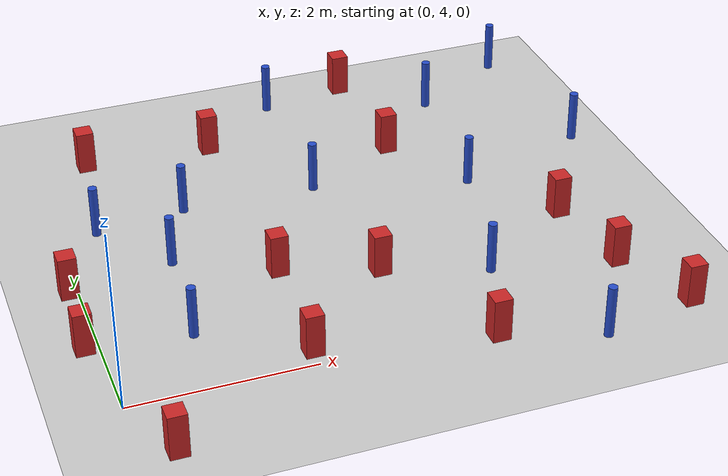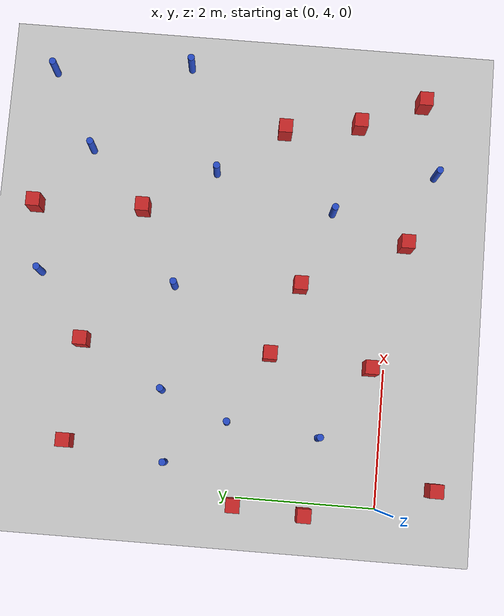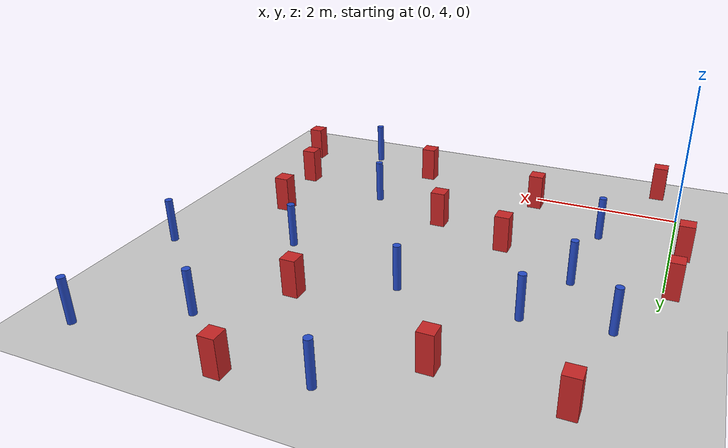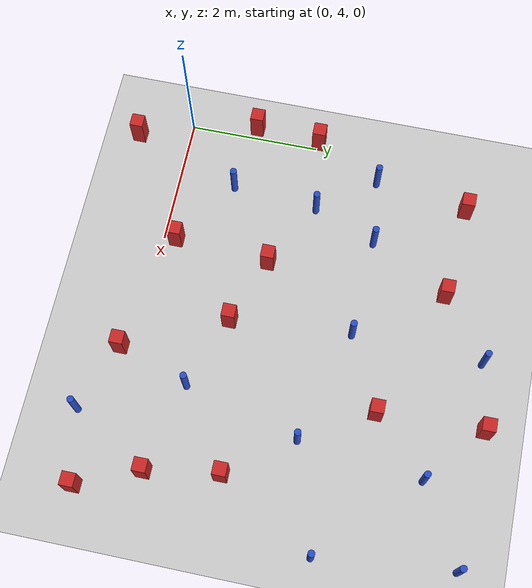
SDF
<sdf version="1.6">
 <world name="default">
  <model name="ground_plane">
   <static>1</static>
   <link name="link">
    <collision name="collision">
     <geometry><plane><normal>0 0 1</normal><size>100 100</size></plane></geometry>
     <surface><friction><ode><mu>100</mu><mu2>50</mu2></ode></friction></surface>
    </collision>
    <visual name="visual">
     <cast_shadows>0</cast_shadows>
     <geometry><plane><normal>0 0 1</normal><size>100 100</size></plane></geometry>
     <material>
      <ambient>1 1 1 1</ambient>
      <diffuse>0.8 0.8 0.8 1</diffuse>
      <specular>0.01 0.01 0.01 1</specular>
     </material>
    </visual>
   </link>
  </model>
  <model name="pole_obstacle2">
   <static>0</static>
   <link name="link">
    <pose>0 0 0.3 0 -0 0</pose>
    <inertial>
     <mass>1</mass>
     <inertia><ixx>0.145833</ixx><ixy>0</ixy><ixz>0</ixz><iyy>0.145833</iyy><iyz>0</iyz><izz>0.125</izz></inertia>
    </inertial>
    <collision name="collision">
     <geometry><cylinder><radius>0.05</radius><length>0.6</length></cylinder></geometry>
    </collision>
    <visual name="visual">
     <geometry><cylinder><radius>0.05</radius><length>0.6</length></cylinder></geometry>
     <material>
      <script><name>Gazebo/Blue</name><uri>file://media/materials/scripts/gazebo.material</uri></script>
     </material>
    </visual>
   </link>
   <pose>1.06586 6.21019 -1e-06 -0 1e-06 1.1e-05</pose>
  </model>
  <model name="pole_obstacle4">
   <static>0</static>
   <link name="link">
    <pose>0 0 0.3 0 -0 0</pose>
    <inertial>
     <mass>1</mass>
     <inertia><ixx>0.145833</ixx><ixy>0</ixy><ixz>0</ixz><iyy>0.145833</iyy><iyz>0</iyz><izz>0.125</izz></inertia>
    </inertial>
    <collision name="collision">
     <geometry><cylinder><radius>0.05</radius><length>0.6</length></cylinder></geometry>
    </collision>
    <visual name="visual">
     <geometry><cylinder><radius>0.05</radius><length>0.6</length></cylinder></geometry>
     <material>
      <script><name>Gazebo/Blue</name><uri>file://media/materials/scripts/gazebo.material</uri></script>
     </material>
    </visual>
   </link>
   <pose>4.92123 8.50647 -6e-06 0 -0 3e-06</pose>
  </model>
  <model name="pole_obstacle8">
   <static>0</static>
   <link name="link">
    <pose>0 0 0.3 0 -0 0</pose>
    <inertial>
     <mass>1</mass>
     <inertia><ixx>0.145833</ixx><ixy>0</ixy><ixz>0</ixz><iyy>0.145833</iyy><iyz>0</iyz><izz>0.125</izz></inertia>
    </inertial>
    <collision name="collision">
     <geometry><cylinder><radius>0.05</radius><length>0.6</length></cylinder></geometry>
    </collision>
    <visual name="visual">
     <geometry><cylinder><radius>0.05</radius><length>0.6</length></cylinder></geometry>
     <material>
      <script><name>Gazebo/Blue</name><uri>file://media/materials/scripts/gazebo.material</uri></script>
     </material>
    </visual>
   </link>
   <pose>2.97873 7.12761 -2e-06 -1e-06 -0 9e-06</pose>
  </model>
  <model name="pole_obstacle9">
   <static>0</static>
   <link name="link">
    <pose>0 0 0.3 0 -0 0</pose>
    <inertial>
     <mass>1</mass>
     <inertia><ixx>0.145833</ixx><ixy>0</ixy><ixz>0</ixz><iyy>0.145833</iyy><iyz>0</iyz><izz>0.125</izz></inertia>
    </inertial>
    <collision name="collision">
     <geometry><cylinder><radius>0.05</radius><length>0.6</length></cylinder></geometry>
    </collision>
    <visual name="visual">
     <geometry><cylinder><radius>0.05</radius><length>0.6</length></cylinder></geometry>
     <material>
      <script><name>Gazebo/Blue</name><uri>file://media/materials/scripts/gazebo.material</uri></script>
     </material>
    </visual>
   </link>
   <pose>0.944334 4.88568 -1e-06 -1e-06 -0 1.3e-05</pose>
  </model>
  <model name="square_post_obstacle11">
   <static>0</static>
   <link name="link">
    <pose>0 0 0.25 0 -0 0</pose>
    <inertial>
     <mass>100</mass>
     <inertia>
      <ixx>0.166667</ixx>
      <ixy>0</ixy>
      <ixz>0</ixz>
      <iyy>0.166667</iyy>
      <iyz>0</iyz>
      <izz>0.166667</izz>
     </inertia>
    </inertial>
    <collision name="collision"><geometry><box><size>0.2 0.2 0.5</size></box></geometry></collision>
    <visual name="visual">
     <geometry><box><size>0.2 0.2 0.5</size></box></geometry>
     <material>
      <script><name>Gazebo/Red</name><uri>file://media/materials/scripts/gazebo.material</uri></script>
     </material>
    </visual>
   </link>
   <pose>0.330037 3.2044 0 -5e-06 -0 0.000241</pose>
  </model>
  <model name="pole_obstacle15">
   <static>0</static>
   <link name="link">
    <pose>0 0 0.3 0 -0 0</pose>
    <inertial>
     <mass>1</mass>
     <inertia><ixx>0.145833</ixx><ixy>0</ixy><ixz>0</ixz><iyy>0.145833</iyy><iyz>0</iyz><izz>0.125</izz></inertia>
    </inertial>
    <collision name="collision">
     <geometry><cylinder><radius>0.05</radius><length>0.6</length></cylinder></geometry>
    </collision>
    <visual name="visual">
     <geometry><cylinder><radius>0.05</radius><length>0.6</length></cylinder></geometry>
     <material>
      <script><name>Gazebo/Blue</name><uri>file://media/materials/scripts/gazebo.material</uri></script>
     </material>
    </visual>
   </link>
   <pose>0.428044 7.05702 -9e-06 1e-06 -1e-06 1.1e-05</pose>
  </model>
  <model name="pole_obstacle26">
   <static>0</static>
   <link name="link">
    <pose>0 0 0.3 0 -0 0</pose>
    <inertial>
     <mass>1</mass>
     <inertia><ixx>0.145833</ixx><ixy>0</ixy><ixz>0</ixz><iyy>0.145833</iyy><iyz>0</iyz><izz>0.125</izz></inertia>
    </inertial>
    <collision name="collision">
     <geometry><cylinder><radius>0.05</radius><length>0.6</length></cylinder></geometry>
    </collision>
    <visual name="visual">
     <geometry><cylinder><radius>0.05</radius><length>0.6</length></cylinder></geometry>
     <material>
      <script><name>Gazebo/Blue</name><uri>file://media/materials/scripts/gazebo.material</uri></script>
     </material>
    </visual>
   </link>
   <pose>3.03408 9.09152 -3e-06 0 -0 9e-06</pose>
  </model>
  <model name="square_post_obstacle22">
   <static>0</static>
   <link name="link">
    <pose>0 0 0.25 0 -0 0</pose>
    <inertial>
     <mass>100</mass>
     <inertia>
      <ixx>0.166667</ixx>
      <ixy>0</ixy>
      <ixz>0</ixz>
      <iyy>0.166667</iyy>
      <iyz>0</iyz>
      <izz>0.166667</izz>
     </inertia>
    </inertial>
    <collision name="collision"><geometry><box><size>0.2 0.2 0.5</size></box></geometry></collision>
    <visual name="visual">
     <geometry><box><size>0.2 0.2 0.5</size></box></geometry>
     <material>
      <script><name>Gazebo/Red</name><uri>file://media/materials/scripts/gazebo.material</uri></script>
     </material>
    </visual>
   </link>
   <pose>3.11926 5.30204 0 -5e-06 -0 0.000241</pose>
  </model>
  <model name="square_post_obstacle24">
   <static>0</static>
   <link name="link">
    <pose>0 0 0.25 0 -0 0</pose>
    <inertial>
     <mass>100</mass>
     <inertia>
      <ixx>0.166667</ixx>
      <ixy>0</ixy>
      <ixz>0</ixz>
      <iyy>0.166667</iyy>
      <iyz>0</iyz>
      <izz>0.166667</izz>
     </inertia>
    </inertial>
    <collision name="collision"><geometry><box><size>0.2 0.2 0.5</size></box></geometry></collision>
    <visual name="visual">
     <geometry><box><size>0.2 0.2 0.5</size></box></geometry>
     <material>
      <script><name>Gazebo/Red</name><uri>file://media/materials/scripts/gazebo.material</uri></script>
     </material>
    </visual>
   </link>
   <pose>5.40658 5.69323 0 -5e-06 -0 0.000241</pose>
  </model>
  <model name="square_post_obstacle25">
   <static>0</static>
   <link name="link">
    <pose>0 0 0.25 0 -0 0</pose>
    <inertial>
     <mass>100</mass>
     <inertia>
      <ixx>0.166667</ixx>
      <ixy>0</ixy>
      <ixz>0</ixz>
      <iyy>0.166667</iyy>
      <iyz>0</iyz>
      <izz>0.166667</izz>
     </inertia>
    </inertial>
    <collision name="collision"><geometry><box><size>0.2 0.2 0.5</size></box></geometry></collision>
    <visual name="visual">
     <geometry><box><size>0.2 0.2 0.5</size></box></geometry>
     <material>
      <script><name>Gazebo/Red</name><uri>file://media/materials/scripts/gazebo.material</uri></script>
     </material>
    </visual>
   </link>
   <pose>0.62635 8.48914 0 -5e-06 -0 0.000241</pose>
  </model>
  <model name="square_post_obstacle27">
   <static>0</static>
   <link name="link">
    <pose>0 0 0.25 0 -0 0</pose>
    <inertial>
     <mass>100</mass>
     <inertia>
      <ixx>0.166667</ixx>
      <ixy>0</ixy>
      <ixz>0</ixz>
      <iyy>0.166667</iyy>
      <iyz>0</iyz>
      <izz>0.166667</izz>
     </inertia>
    </inertial>
    <collision name="collision"><geometry><box><size>0.2 0.2 0.5</size></box></geometry></collision>
    <visual name="visual">
     <geometry><box><size>0.2 0.2 0.5</size></box></geometry>
     <material>
      <script><name>Gazebo/Red</name><uri>file://media/materials/scripts/gazebo.material</uri></script>
     </material>
    </visual>
   </link>
   <pose>4.08363 7.68164 0 -5e-06 -0 0.000241</pose>
  </model>
  <model name="square_post_obstacle30">
   <static>0</static>
   <link name="link">
    <pose>0 0 0.25 0 -0 0</pose>
    <inertial>
     <mass>100</mass>
     <inertia>
      <ixx>0.166667</ixx>
      <ixy>0</ixy>
      <ixz>0</ixz>
      <iyy>0.166667</iyy>
      <iyz>0</iyz>
      <izz>0.166667</izz>
     </inertia>
    </inertial>
    <collision name="collision"><geometry><box><size>0.2 0.2 0.5</size></box></geometry></collision>
    <visual name="visual">
     <geometry><box><size>0.2 0.2 0.5</size></box></geometry>
     <material>
      <script><name>Gazebo/Red</name><uri>file://media/materials/scripts/gazebo.material</uri></script>
     </material>
    </visual>
   </link>
   <pose>2.08269 8.38852 0 -5e-06 -0 0.000241</pose>
  </model>
  <model name="pole_obstacle37">
   <static>0</static>
   <link name="link">
    <pose>0 0 0.3 0 -0 0</pose>
    <inertial>
     <mass>1</mass>
     <inertia><ixx>0.145833</ixx><ixy>0</ixy><ixz>0</ixz><iyy>0.145833</iyy><iyz>0</iyz><izz>0.125</izz></inertia>
    </inertial>
    <collision name="collision">
     <geometry><cylinder><radius>0.05</radius><length>0.6</length></cylinder></geometry>
    </collision>
    <visual name="visual">
     <geometry><cylinder><radius>0.05</radius><length>0.6</length></cylinder></geometry>
     <material>
      <script><name>Gazebo/Blue</name><uri>file://media/materials/scripts/gazebo.material</uri></script>
     </material>
    </visual>
   </link>
   <pose>6.28514 7.15417 -1e-06 -0 -1e-06 7e-06</pose>
  </model>
  <model name="square_post_obstacle34">
   <static>0</static>
   <link name="link">
    <pose>0 0 0.25 0 -0 0</pose>
    <inertial>
     <mass>100</mass>
     <inertia>
      <ixx>0.166667</ixx>
      <ixy>0</ixy>
      <ixz>0</ixz>
      <iyy>0.166667</iyy>
      <iyz>0</iyz>
      <izz>0.166667</izz>
     </inertia>
    </inertial>
    <collision name="collision"><geometry><box><size>0.2 0.2 0.5</size></box></geometry></collision>
    <visual name="visual">
     <geometry><box><size>0.2 0.2 0.5</size></box></geometry>
     <material>
      <script><name>Gazebo/Red</name><uri>file://media/materials/scripts/gazebo.material</uri></script>
     </material>
    </visual>
   </link>
   <pose>3.8413 3.80793 0 -5e-06 -0 0.000241</pose>
  </model>
  <model name="pole_obstacle46">
   <static>0</static>
   <link name="link">
    <pose>0 0 0.3 0 -0 0</pose>
    <inertial>
     <mass>1</mass>
     <inertia><ixx>0.145833</ixx><ixy>0</ixy><ixz>0</ixz><iyy>0.145833</iyy><iyz>0</iyz><izz>0.125</izz></inertia>
    </inertial>
    <collision name="collision">
     <geometry><cylinder><radius>0.05</radius><length>0.6</length></cylinder></geometry>
    </collision>
    <visual name="visual">
     <geometry><cylinder><radius>0.05</radius><length>0.6</length></cylinder></geometry>
     <material>
      <script><name>Gazebo/Blue</name><uri>file://media/materials/scripts/gazebo.material</uri></script>
     </material>
    </visual>
   </link>
   <pose>6.06709 9.16637 -6e-06 1e-06 0 3e-06</pose>
  </model>
  <model name="square_post_obstacle37">
   <static>0</static>
   <link name="link">
    <pose>0 0 0.25 0 -0 0</pose>
    <inertial>
     <mass>100</mass>
     <inertia>
      <ixx>0.166667</ixx>
      <ixy>0</ixy>
      <ixz>0</ixz>
      <iyy>0.166667</iyy>
      <iyz>0</iyz>
      <izz>0.166667</izz>
     </inertia>
    </inertial>
    <collision name="collision"><geometry><box><size>0.2 0.2 0.5</size></box></geometry></collision>
    <visual name="visual">
     <geometry><box><size>0.2 0.2 0.5</size></box></geometry>
     <material>
      <script><name>Gazebo/Red</name><uri>file://media/materials/scripts/gazebo.material</uri></script>
     </material>
    </visual>
   </link>
   <pose>5.97501 3.6732 0 -5e-06 -0 0.000241</pose>
  </model>
  <model name="pole_obstacle51">
   <static>0</static>
   <link name="link">
    <pose>0 0 0.3 0 -0 0</pose>
    <inertial>
     <mass>1</mass>
     <inertia><ixx>0.145833</ixx><ixy>0</ixy><ixz>0</ixz><iyy>0.145833</iyy><iyz>0</iyz><izz>0.125</izz></inertia>
    </inertial>
    <collision name="collision">
     <geometry><cylinder><radius>0.05</radius><length>0.6</length></cylinder></geometry>
    </collision>
    <visual name="visual">
     <geometry><cylinder><radius>0.05</radius><length>0.6</length></cylinder></geometry>
     <material>
      <script><name>Gazebo/Blue</name><uri>file://media/materials/scripts/gazebo.material</uri></script>
     </material>
    </visual>
   </link>
   <pose>4.8983 3.43262 -2e-06 0 -0 1e-05</pose>
  </model>
  <model name="square_post_obstacle43">
   <static>0</static>
   <link name="link">
    <pose>0 0 0.25 0 -0 0</pose>
    <inertial>
     <mass>100</mass>
     <inertia>
      <ixx>0.166667</ixx>
      <ixy>0</ixy>
      <ixz>0</ixz>
      <iyy>0.166667</iyy>
      <iyz>0</iyz>
      <izz>0.166667</izz>
     </inertia>
    </inertial>
    <collision name="collision"><geometry><box><size>0.2 0.2 0.5</size></box></geometry></collision>
    <visual name="visual">
     <geometry><box><size>0.2 0.2 0.5</size></box></geometry>
     <material>
      <script><name>Gazebo/Red</name><uri>file://media/materials/scripts/gazebo.material</uri></script>
     </material>
    </visual>
   </link>
   <pose>-0.155224 5.02814 0 -5e-06 -0 0.000241</pose>
  </model>
  <model name="square_post_obstacle47">
   <static>0</static>
   <link name="link">
    <pose>0 0 0.25 0 -0 0</pose>
    <inertial>
     <mass>100</mass>
     <inertia>
      <ixx>0.166667</ixx>
      <ixy>0</ixy>
      <ixz>0</ixz>
      <iyy>0.166667</iyy>
      <iyz>0</iyz>
      <izz>0.166667</izz>
     </inertia>
    </inertial>
    <collision name="collision"><geometry><box><size>0.2 0.2 0.5</size></box></geometry></collision>
    <visual name="visual">
     <geometry><box><size>0.2 0.2 0.5</size></box></geometry>
     <material>
      <script><name>Gazebo/Red</name><uri>file://media/materials/scripts/gazebo.material</uri></script>
     </material>
    </visual>
   </link>
   <pose>-0.095284 6.03367 0 -5e-06 -0 0.000241</pose>
  </model>
  <model name="square_post_obstacle49">
   <static>0</static>
   <link name="link">
    <pose>0 0 0.25 0 -0 0</pose>
    <inertial>
     <mass>100</mass>
     <inertia>
      <ixx>0.166667</ixx>
      <ixy>0</ixy>
      <ixz>0</ixz>
      <iyy>0.166667</iyy>
      <iyz>0</iyz>
      <izz>0.166667</izz>
     </inertia>
    </inertial>
    <collision name="collision"><geometry><box><size>0.2 0.2 0.5</size></box></geometry></collision>
    <visual name="visual">
     <geometry><box><size>0.2 0.2 0.5</size></box></geometry>
     <material>
      <script><name>Gazebo/Red</name><uri>file://media/materials/scripts/gazebo.material</uri></script>
     </material>
    </visual>
   </link>
   <pose>5.5799 4.59776 0 -5e-06 -0 0.000241</pose>
  </model>
  <model name="pole_obstacle77">
   <static>0</static>
   <link name="link">
    <pose>0 0 0.3 0 -0 0</pose>
    <inertial>
     <mass>1</mass>
     <inertia><ixx>0.145833</ixx><ixy>0</ixy><ixz>0</ixz><iyy>0.145833</iyy><iyz>0</iyz><izz>0.125</izz></inertia>
    </inertial>
    <collision name="collision">
     <geometry><cylinder><radius>0.05</radius><length>0.6</length></cylinder></geometry>
    </collision>
    <visual name="visual">
     <geometry><cylinder><radius>0.05</radius><length>0.6</length></cylinder></geometry>
     <material>
      <script><name>Gazebo/Blue</name><uri>file://media/materials/scripts/gazebo.material</uri></script>
     </material>
    </visual>
   </link>
   <pose>4.23784 4.90006 -4e-06 0 -0 1e-06</pose>
  </model>
  <model name="pole_obstacle80">
   <static>0</static>
   <link name="link">
    <pose>0 0 0.3 0 -0 0</pose>
    <inertial>
     <mass>1</mass>
     <inertia><ixx>0.145833</ixx><ixy>0</ixy><ixz>0</ixz><iyy>0.145833</iyy><iyz>0</iyz><izz>0.125</izz></inertia>
    </inertial>
    <collision name="collision">
     <geometry><cylinder><radius>0.05</radius><length>0.6</length></cylinder></geometry>
    </collision>
    <visual name="visual">
     <geometry><cylinder><radius>0.05</radius><length>0.6</length></cylinder></geometry>
     <material>
      <script><name>Gazebo/Blue</name><uri>file://media/materials/scripts/gazebo.material</uri></script>
     </material>
    </visual>
   </link>
   <pose>4.70964 6.64986 -4e-06 0 -0 1e-06</pose>
  </model>
  <model name="square_post_obstacle55">
   <static>0</static>
   <link name="link">
    <pose>0 0 0.25 0 -0 0</pose>
    <inertial>
     <mass>100</mass>
     <inertia>
      <ixx>0.166667</ixx>
      <ixy>0</ixy>
      <ixz>0</ixz>
      <iyy>0.166667</iyy>
      <iyz>0</iyz>
      <izz>0.166667</izz>
     </inertia>
    </inertial>
    <collision name="collision"><geometry><box><size>0.2 0.2 0.5</size></box></geometry></collision>
    <visual name="visual">
     <geometry><box><size>0.2 0.2 0.5</size></box></geometry>
     <material>
      <script><name>Gazebo/Red</name><uri>file://media/materials/scripts/gazebo.material</uri></script>
     </material>
    </visual>
   </link>
   <pose>4.02913 9.26178 0 -5e-06 -0 0.000241</pose>
  </model>
  <model name="square_post_obstacle57">
   <static>0</static>
   <link name="link">
    <pose>0 0 0.25 0 -0 0</pose>
    <inertial>
     <mass>100</mass>
     <inertia>
      <ixx>0.166667</ixx>
      <ixy>0</ixy>
      <ixz>0</ixz>
      <iyy>0.166667</iyy>
      <iyz>0</iyz>
      <izz>0.166667</izz>
     </inertia>
    </inertial>
    <collision name="collision"><geometry><box><size>0.2 0.2 0.5</size></box></geometry></collision>
    <visual name="visual">
     <geometry><box><size>0.2 0.2 0.5</size></box></geometry>
     <material>
      <script><name>Gazebo/Red</name><uri>file://media/materials/scripts/gazebo.material</uri></script>
     </material>
    </visual>
   </link>
   <pose>1.99225 4.20967 0 -5e-06 -0 0.000241</pose>
  </model>
  <model name="square_post_obstacle58">
   <static>0</static>
   <link name="link">
    <pose>0 0 0.25 0 -0 0</pose>
    <inertial>
     <mass>100</mass>
     <inertia>
      <ixx>0.166667</ixx>
      <ixy>0</ixy>
      <ixz>0</ixz>
      <iyy>0.166667</iyy>
      <iyz>0</iyz>
      <izz>0.166667</izz>
     </inertia>
    </inertial>
    <collision name="collision"><geometry><box><size>0.2 0.2 0.5</size></box></geometry></collision>
    <visual name="visual">
     <geometry><box><size>0.2 0.2 0.5</size></box></geometry>
     <material>
      <script><name>Gazebo/Red</name><uri>file://media/materials/scripts/gazebo.material</uri></script>
     </material>
    </visual>
   </link>
   <pose>2.08846 5.66735 0 -5e-06 -0 0.000241</pose>
  </model>
  <model name="pole_obstacle88">
   <static>0</static>
   <link name="link">
    <pose>0 0 0.3 0 -0 0</pose>
    <inertial>
     <mass>1</mass>
     <inertia><ixx>0.145833</ixx><ixy>0</ixy><ixz>0</ixz><iyy>0.145833</iyy><iyz>0</iyz><izz>0.125</izz></inertia>
    </inertial>
    <collision name="collision">
     <geometry><cylinder><radius>0.05</radius><length>0.6</length></cylinder></geometry>
    </collision>
    <visual name="visual">
     <geometry><cylinder><radius>0.05</radius><length>0.6</length></cylinder></geometry>
     <material>
      <script><name>Gazebo/Blue</name><uri>file://media/materials/scripts/gazebo.material</uri></script>
     </material>
    </visual>
   </link>
   <pose>1.45274 7.18317 -1e-06 -1e-06 -0 1e-05</pose>
  </model>
 </world>
</sdf>
